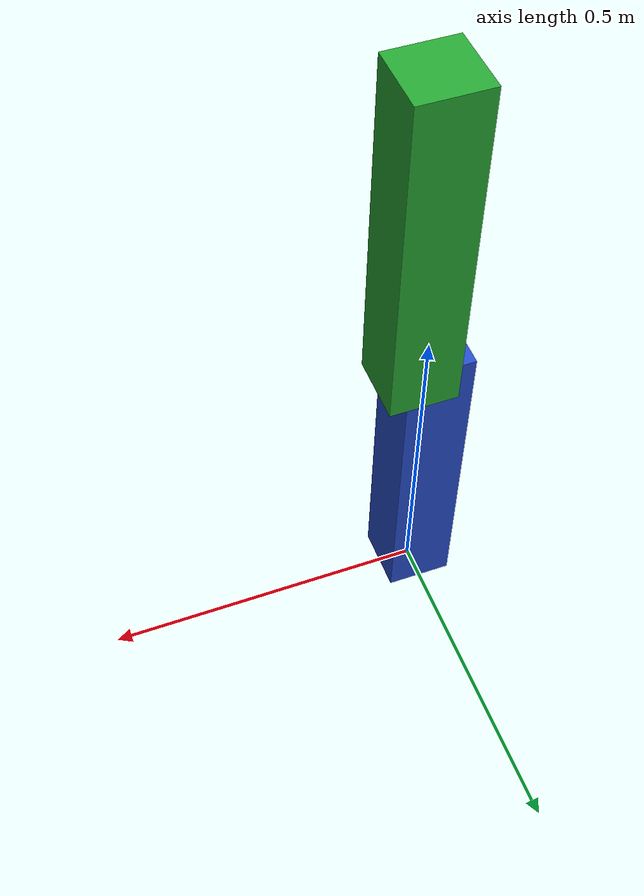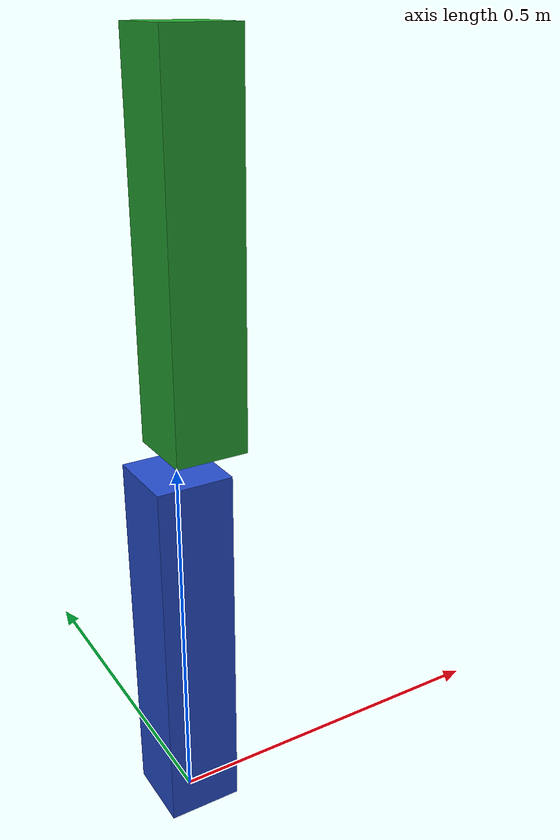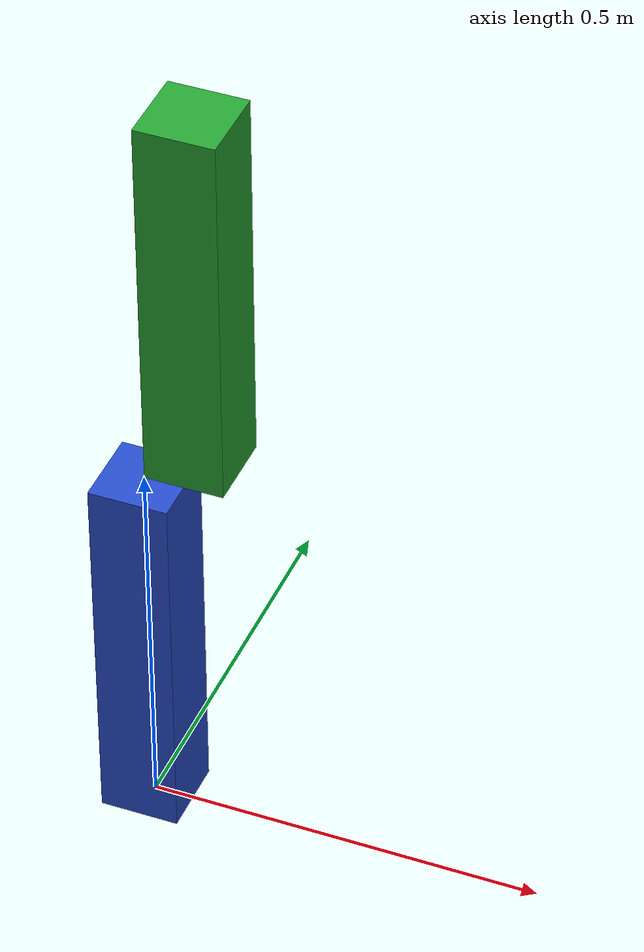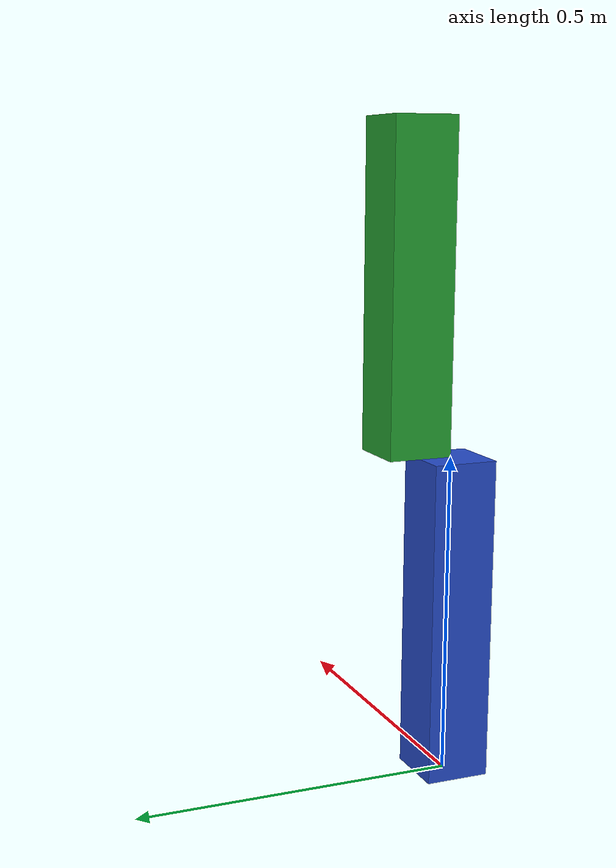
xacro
<?xml version="1.0"?>
<!-- Revolute-Revolute Manipulator -->
<robot name="rrbot" xmlns:xacro="http://www.ros.org/wiki/xacro">

  <!-- Constants for robot dimensions -->
   <xacro:property name="width" value="0.1" />   <!-- Beams are square in length and width -->
  <xacro:property name="height" value="0.5" />   <!-- Links -->
  <xacro:property name="axle_offset" value="0.00" /> <!-- Space between joint and end of beam -->
  <xacro:property name="damp" value="0.7" />    <!-- damping coefficient -->

  <!-- Default Inertial -->
  <xacro:macro name="default_inertial" params="z_value mass">
    <inertial>
      <origin xyz="0 0 ${z_value}" rpy="0 0 0"/>
      <mass value="${mass}" />
      <inertia ixx="0" ixy="0.0" ixz="0.0"
               iyy="0" iyz="0.0"
               izz="0" />
      </inertial>
  </xacro:macro>
<gazebo reference="mid_link">
  <material>Gazebo/Blue</material>
</gazebo>
<gazebo reference="link2">
  <material>Gazebo/Red</material>
</gazebo>
<gazebo reference="link1">
  <material>Gazebo/Green</material>
</gazebo>

   <!-- Top Link -->
  <link name="mid_link">
    <visual>
      <origin xyz="0 0 ${height/2 - axle_offset}" rpy="0 0 0"/>
      <geometry>
	<box size="${width} ${width} ${height}"/>
      </geometry>
    </visual>

    <collision>
      <origin xyz="0 0 ${height/2 - axle_offset}" rpy="0 0 0"/>
      <geometry>
	<box size="${width} ${width} ${height/1.5}"/>
      </geometry>
    </collision>

    <xacro:default_inertial z_value="${height/2 - axle_offset}" mass="1"/>
  </link>

  <!-- Top Link -->
  <link name="link1">
    <visual>
      <origin xyz="0 0 ${height/2 - axle_offset}" rpy="0 0 0"/>
      <geometry>
	<box size="${width} ${width} ${height}"/>
      </geometry>
    </visual>

    <collision>
      <origin xyz="0 0 ${height/2 - axle_offset}" rpy="0 0 0"/>
      <geometry>
	<box size="${width} ${width} ${height/1.5}"/>
      </geometry>
    </collision>

    <xacro:default_inertial z_value="${height/2 - axle_offset}" mass="1"/>
  </link>

  <!-- Joint between Middle Link and Top Link -->
  <joint name="joint_top" type="revolute">
    <parent link="mid_link"/>
    <child link="link1"/>
    <origin xyz="${width/2} ${width/2} ${height}" rpy="0 0 0"/>
    <axis xyz="0 1 0"/>
    <dynamics damping="${damp}"/>
    <limit effort="100.0" velocity="0.5" lower="-3.14" upper="3.14" />
  </joint>

</robot>
